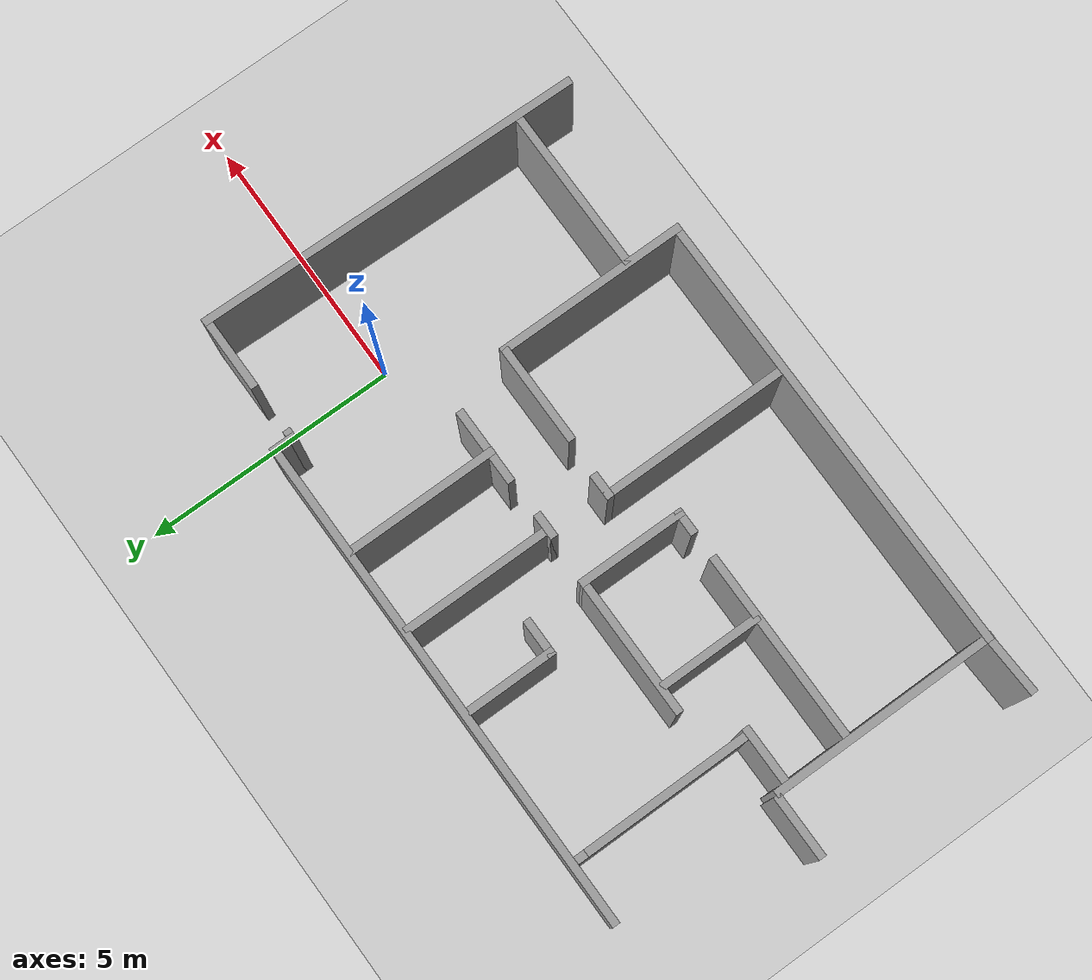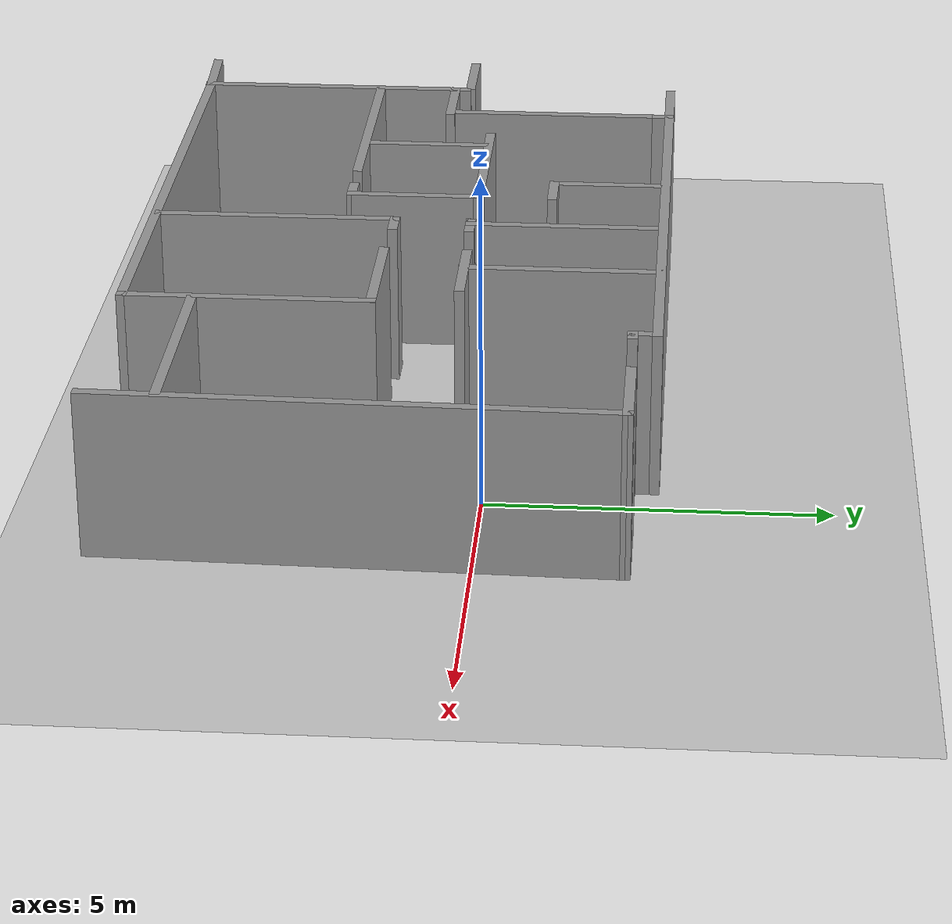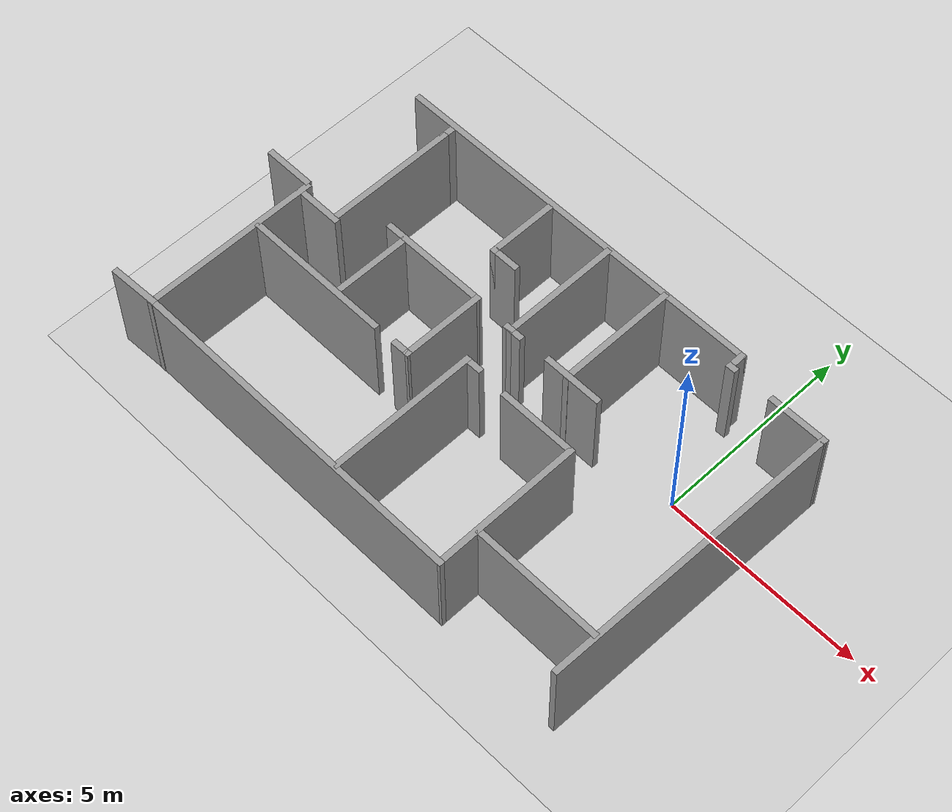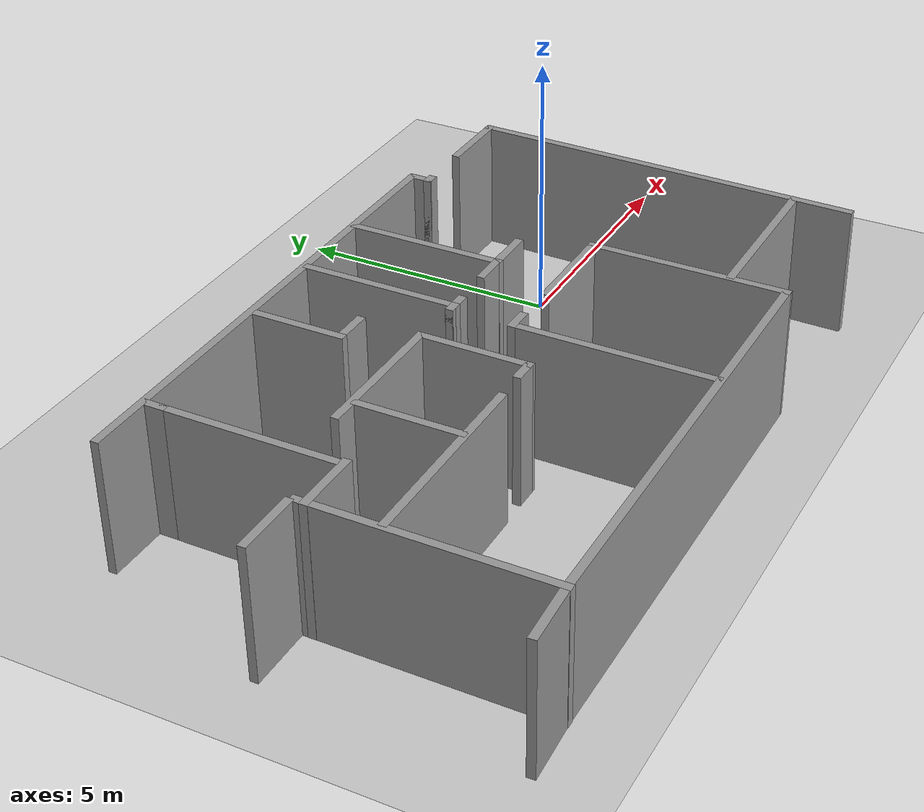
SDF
<sdf version="1.6">
 <world name="default">
  <light name="sun" type="directional">
   <pose>0 0 10 0 -0 0</pose>
   <diffuse>0.8 0.8 0.8 1</diffuse>
   <specular>0.1 0.1 0.1 1</specular>
   <attenuation>
    <range>1000</range>
    <constant>0.9</constant>
    <linear>0.01</linear>
    <quadratic>0.001</quadratic>
   </attenuation>
   <direction>-0.5 0.5 -1</direction>
  </light>
  <model name="ground_plane">
   <static>1</static>
   <link name="link">
    <collision name="collision">
     <geometry><plane><normal>0 0 1</normal><size>100 100</size></plane></geometry>
     <surface><friction><ode><mu>100</mu><mu2>50</mu2></ode></friction></surface>
    </collision>
    <visual name="visual">
     <cast_shadows>0</cast_shadows>
     <geometry><plane><normal>0 0 1</normal><size>100 100</size></plane></geometry>
     <material>
      <script><uri>file://media/materials/scripts/gazebo.material</uri><name>Gazebo/Grey</name></script>
     </material>
    </visual>
   </link>
  </model>
  <gravity>0 0 -9.8</gravity>
  <magnetic_field>6e-06 2.3e-05 -4.2e-05</magnetic_field>
  <atmosphere type="adiabatic"/>
  <physics name="default_physics" default="0" type="ode">
   <max_step_size>0.001</max_step_size>
   <real_time_factor>1</real_time_factor>
   <real_time_update_rate>1000</real_time_update_rate>
  </physics>
  <scene><ambient>0.4 0.4 0.4 1</ambient><background>0.7 0.7 0.7 1</background><shadows>1</shadows></scene>
  <spherical_coordinates>
   <surface_model>EARTH_WGS84</surface_model>
   <latitude_deg>0</latitude_deg>
   <longitude_deg>0</longitude_deg>
   <elevation>0</elevation>
   <heading_deg>0</heading_deg>
  </spherical_coordinates>
  <model name="whiz_ex">
   <pose>-4.6388 -1.45356 0 0 -0 0</pose>
   <link name="Wall_10">
    <collision name="Wall_10_Collision">
     <geometry><box><size>1.25 0.15 2.5</size></box></geometry>
     <pose>0 0 1.25 0 -0 0</pose>
    </collision>
    <visual name="Wall_10_Visual">
     <pose>0 0 1.25 0 -0 0</pose>
     <geometry><box><size>1.25 0.15 2.5</size></box></geometry>
     <material>
      <script><uri>file://media/materials/scripts/gazebo.material</uri><name>Gazebo/Grey</name></script>
      <ambient>1 1 1 1</ambient>
     </material>
    </visual>
    <pose>-6.05295 0.541414 0 0 -0 3.14159</pose>
   </link>
   <link name="Wall_12">
    <collision name="Wall_12_Collision">
     <geometry><box><size>4.4737 0.15 2.5</size></box></geometry>
     <pose>0 0 1.25 0 -0 0</pose>
    </collision>
    <visual name="Wall_12_Visual">
     <pose>0 0 1.25 0 -0 0</pose>
     <geometry><box><size>4.4737 0.15 2.5</size></box></geometry>
     <material>
      <script><uri>file://media/materials/scripts/gazebo.material</uri><name>Gazebo/Grey</name></script>
      <ambient>1 1 1 1</ambient>
     </material>
    </visual>
    <pose>-5.40643 -1.68841 0 0 -0 1.5708</pose>
   </link>
   <link name="Wall_15">
    <collision name="Wall_15_Collision">
     <geometry><box><size>1.25111 0.15 2.5</size></box></geometry>
     <pose>0 0 1.25 0 -0 0</pose>
    </collision>
    <visual name="Wall_15_Visual">
     <pose>0 0 1.25 0 -0 0</pose>
     <geometry><box><size>1.25111 0.15 2.5</size></box></geometry>
     <material>
      <script><uri>file://media/materials/scripts/gazebo.material</uri><name>Gazebo/Grey</name></script>
      <ambient>1 1 1 1</ambient>
     </material>
    </visual>
    <pose>-5.95643 -3.86341 0 0 0 -3.09668</pose>
   </link>
   <link name="Wall_18">
    <collision name="Wall_18_Collision">
     <geometry><box><size>0.5 0.15 2.5</size></box></geometry>
     <pose>0 0 1.25 0 -0 0</pose>
    </collision>
    <visual name="Wall_18_Visual">
     <pose>0 0 1.25 0 -0 0</pose>
     <geometry><box><size>0.5 0.15 2.5</size></box></geometry>
     <material>
      <script><uri>file://media/materials/scripts/gazebo.material</uri><name>Gazebo/Grey</name></script>
      <ambient>1 1 1 1</ambient>
     </material>
    </visual>
    <pose>0.389091 -0.180158 0 0 -0 0</pose>
   </link>
   <link name="Wall_2">
    <collision name="Wall_2_Collision">
     <geometry><box><size>7.5674 0.15 2.5</size></box></geometry>
     <pose>0 0 1.25 0 -0 0</pose>
    </collision>
    <visual name="Wall_2_Visual">
     <pose>0 0 1.25 0 -0 0</pose>
     <geometry><box><size>7.5674 0.15 2.5</size></box></geometry>
     <material>
      <script><uri>file://media/materials/scripts/gazebo.material</uri><name>Gazebo/Grey</name></script>
      <ambient>1 1 1 1</ambient>
     </material>
    </visual>
    <pose>6.52247 -0.153961 0 0 0 -1.59207</pose>
   </link>
   <link name="Wall_20">
    <collision name="Wall_20_Collision">
     <geometry><box><size>3.75 0.15 2.5</size></box></geometry>
     <pose>0 0 1.25 0 -0 0</pose>
    </collision>
    <visual name="Wall_20_Visual">
     <pose>0 0 1.25 0 -0 0</pose>
     <geometry><box><size>3.75 0.15 2.5</size></box></geometry>
     <material>
      <script><uri>file://media/materials/scripts/gazebo.material</uri><name>Gazebo/Grey</name></script>
      <ambient>1 1 1 1</ambient>
     </material>
    </visual>
    <pose>0.214091 -1.98016 0 0 0 -1.5708</pose>
   </link>
   <link name="Wall_22">
    <collision name="Wall_22_Collision">
     <geometry><box><size>2 0.15 2.5</size></box></geometry>
     <pose>0 0 1.25 0 -0 0</pose>
    </collision>
    <visual name="Wall_22_Visual">
     <pose>0 0 1.25 0 -0 0</pose>
     <geometry><box><size>2 0.15 2.5</size></box></geometry>
     <material>
      <script><uri>file://media/materials/scripts/gazebo.material</uri><name>Gazebo/Grey</name></script>
      <ambient>1 1 1 1</ambient>
     </material>
    </visual>
    <pose>2.30947 -0.232759 0 0 -0 0</pose>
   </link>
   <link name="Wall_23">
    <collision name="Wall_23_Collision">
     <geometry><box><size>3.75 0.15 2.5</size></box></geometry>
     <pose>0 0 1.25 0 -0 0</pose>
    </collision>
    <visual name="Wall_23_Visual">
     <pose>0 0 1.25 0 -0 0</pose>
     <geometry><box><size>3.75 0.15 2.5</size></box></geometry>
     <material>
      <script><uri>file://media/materials/scripts/gazebo.material</uri><name>Gazebo/Grey</name></script>
      <ambient>1 1 1 1</ambient>
     </material>
    </visual>
    <pose>3.23447 -2.03276 0 0 0 -1.5708</pose>
   </link>
   <link name="Wall_25">
    <collision name="Wall_25_Collision">
     <geometry><box><size>3.25 0.15 2.5</size></box></geometry>
     <pose>0 0 1.25 0 -0 0</pose>
    </collision>
    <visual name="Wall_25_Visual">
     <pose>0 0 1.25 0 -0 0</pose>
     <geometry><box><size>3.25 0.15 2.5</size></box></geometry>
     <material>
      <script><uri>file://media/materials/scripts/gazebo.material</uri><name>Gazebo/Grey</name></script>
      <ambient>1 1 1 1</ambient>
     </material>
    </visual>
    <pose>4.85442 -2.81022 0 0 -0 0</pose>
   </link>
   <link name="Wall_27">
    <collision name="Wall_27_Collision">
     <geometry><box><size>8.79095 0.15 2.5</size></box></geometry>
     <pose>0 0 1.25 0 -0 0</pose>
    </collision>
    <visual name="Wall_27_Visual">
     <pose>0 0 1.25 0 -0 0</pose>
     <geometry><box><size>8.79095 0.15 2.5</size></box></geometry>
     <material>
      <script><uri>file://media/materials/scripts/gazebo.material</uri><name>Gazebo/Grey</name></script>
      <ambient>1 1 1 1</ambient>
     </material>
    </visual>
    <pose>-1.08598 -3.83573 0 0 -0 0.000687</pose>
   </link>
   <link name="Wall_31">
    <collision name="Wall_31_Collision">
     <geometry><box><size>2.76315 0.15 2.5</size></box></geometry>
     <pose>0 0 1.25 0 -0 0</pose>
    </collision>
    <visual name="Wall_31_Visual">
     <pose>0 0 1.25 0 -0 0</pose>
     <geometry><box><size>2.76315 0.15 2.5</size></box></geometry>
     <material>
      <script><uri>file://media/materials/scripts/gazebo.material</uri><name>Gazebo/Grey</name></script>
      <ambient>1 1 1 1</ambient>
     </material>
    </visual>
    <pose>-2.04362 1.02243 0 0 -0 0</pose>
   </link>
   <link name="Wall_33">
    <collision name="Wall_33_Collision">
     <geometry><box><size>0.5 0.15 2.5</size></box></geometry>
     <pose>0 0 1.25 0 -0 0</pose>
    </collision>
    <visual name="Wall_33_Visual">
     <pose>0 0 1.25 0 -0 0</pose>
     <geometry><box><size>0.5 0.15 2.5</size></box></geometry>
     <material>
      <script><uri>file://media/materials/scripts/gazebo.material</uri><name>Gazebo/Grey</name></script>
      <ambient>1 1 1 1</ambient>
     </material>
    </visual>
    <pose>-0.920191 -0.947573 0 0 -0 3.14159</pose>
   </link>
   <link name="Wall_38">
    <collision name="Wall_38_Collision">
     <geometry><box><size>3.75 0.15 2.5</size></box></geometry>
     <pose>0 0 1.25 0 -0 0</pose>
    </collision>
    <visual name="Wall_38_Visual">
     <pose>0 0 1.25 0 -0 0</pose>
     <geometry><box><size>3.75 0.15 2.5</size></box></geometry>
     <material>
      <script><uri>file://media/materials/scripts/gazebo.material</uri><name>Gazebo/Grey</name></script>
      <ambient>1 1 1 1</ambient>
     </material>
    </visual>
    <pose>-3.52433 -0.96048 0 0 -0 3.14159</pose>
   </link>
   <link name="Wall_4">
    <collision name="Wall_4_Collision">
     <geometry><box><size>1.5 0.15 2.5</size></box></geometry>
     <pose>0 0 1.25 0 -0 0</pose>
    </collision>
    <visual name="Wall_4_Visual">
     <pose>0 0 1.25 0 -0 0</pose>
     <geometry><box><size>1.5 0.15 2.5</size></box></geometry>
     <material>
      <script><uri>file://media/materials/scripts/gazebo.material</uri><name>Gazebo/Grey</name></script>
      <ambient>1 1 1 1</ambient>
     </material>
    </visual>
    <pose>5.92637 3.5539 0 0 -0 3.14159</pose>
   </link>
   <link name="Wall_40">
    <collision name="Wall_40_Collision">
     <geometry><box><size>2 0.15 2.5</size></box></geometry>
     <pose>0 0 1.25 0 -0 0</pose>
    </collision>
    <visual name="Wall_40_Visual">
     <pose>0 0 1.25 0 -0 0</pose>
     <geometry><box><size>2 0.15 2.5</size></box></geometry>
     <material>
      <script><uri>file://media/materials/scripts/gazebo.material</uri><name>Gazebo/Grey</name></script>
      <ambient>1 1 1 1</ambient>
     </material>
    </visual>
    <pose>-2.90026 0.016761 0 0 0 -1.5708</pose>
   </link>
   <link name="Wall_44">
    <collision name="Wall_44_Collision">
     <geometry><box><size>1.25 0.15 2.5</size></box></geometry>
     <pose>0 0 1.25 0 -0 0</pose>
    </collision>
    <visual name="Wall_44_Visual">
     <pose>0 0 1.25 0 -0 0</pose>
     <geometry><box><size>1.25 0.15 2.5</size></box></geometry>
     <material>
      <script><uri>file://media/materials/scripts/gazebo.material</uri><name>Gazebo/Grey</name></script>
      <ambient>1 1 1 1</ambient>
     </material>
    </visual>
    <pose>-4.85954 0.293641 0 0 -0 3.14159</pose>
   </link>
   <link name="Wall_47">
    <collision name="Wall_47_Collision">
     <geometry><box><size>2.12002 0.15 2.5</size></box></geometry>
     <pose>0 0 1.25 0 -0 0</pose>
    </collision>
    <visual name="Wall_47_Visual">
     <pose>0 0 1.25 0 -0 0</pose>
     <geometry><box><size>2.12002 0.15 2.5</size></box></geometry>
     <material>
      <script><uri>file://media/materials/scripts/gazebo.material</uri><name>Gazebo/Grey</name></script>
      <ambient>1 1 1 1</ambient>
     </material>
    </visual>
    <pose>-0.741115 0.037427 0 0 -0 1.56666</pose>
   </link>
   <link name="Wall_49">
    <collision name="Wall_49_Collision">
     <geometry><box><size>1.75 0.15 2.5</size></box></geometry>
     <pose>0 0 1.25 0 -0 0</pose>
    </collision>
    <visual name="Wall_49_Visual">
     <pose>0 0 1.25 0 -0 0</pose>
     <geometry><box><size>1.75 0.15 2.5</size></box></geometry>
     <material>
      <script><uri>file://media/materials/scripts/gazebo.material</uri><name>Gazebo/Grey</name></script>
      <ambient>1 1 1 1</ambient>
     </material>
    </visual>
    <pose>-1.36298 2.95769 0 0 0 -1.5708</pose>
   </link>
   <link name="Wall_50">
    <collision name="Wall_50_Collision">
     <geometry><box><size>0.75 0.15 2.5</size></box></geometry>
     <pose>0 0 1.25 0 -0 0</pose>
    </collision>
    <visual name="Wall_50_Visual">
     <pose>0 0 1.25 0 -0 0</pose>
     <geometry><box><size>0.75 0.15 2.5</size></box></geometry>
     <material>
      <script><uri>file://media/materials/scripts/gazebo.material</uri><name>Gazebo/Grey</name></script>
      <ambient>1 1 1 1</ambient>
     </material>
    </visual>
    <pose>-1.06298 2.15769 0 0 -0 0</pose>
   </link>
   <link name="Wall_52">
    <collision name="Wall_52_Collision">
     <geometry><box><size>3 0.15 2.5</size></box></geometry>
     <pose>0 0 1.25 0 -0 0</pose>
    </collision>
    <visual name="Wall_52_Visual">
     <pose>0 0 1.25 0 -0 0</pose>
     <geometry><box><size>3 0.15 2.5</size></box></geometry>
     <material>
      <script><uri>file://media/materials/scripts/gazebo.material</uri><name>Gazebo/Grey</name></script>
      <ambient>1 1 1 1</ambient>
     </material>
    </visual>
    <pose>0.325194 2.40113 0 0 0 -1.5708</pose>
   </link>
   <link name="Wall_53">
    <collision name="Wall_53_Collision">
     <geometry><box><size>0.25 0.15 2.5</size></box></geometry>
     <pose>0 0 1.25 0 -0 0</pose>
    </collision>
    <visual name="Wall_53_Visual">
     <pose>0 0 1.25 0 -0 0</pose>
     <geometry><box><size>0.25 0.15 2.5</size></box></geometry>
     <material>
      <script><uri>file://media/materials/scripts/gazebo.material</uri><name>Gazebo/Grey</name></script>
      <ambient>1 1 1 1</ambient>
     </material>
    </visual>
    <pose>0.275194 0.976133 0 0 -0 3.14159</pose>
   </link>
   <link name="Wall_54">
    <collision name="Wall_54_Collision">
     <geometry><box><size>0.5 0.15 2.5</size></box></geometry>
     <pose>0 0 1.25 0 -0 0</pose>
    </collision>
    <visual name="Wall_54_Visual">
     <pose>0 0 1.25 0 -0 0</pose>
     <geometry><box><size>0.5 0.15 2.5</size></box></geometry>
     <material>
      <script><uri>file://media/materials/scripts/gazebo.material</uri><name>Gazebo/Grey</name></script>
      <ambient>1 1 1 1</ambient>
     </material>
    </visual>
    <pose>0.400194 0.976133 0 0 -0 0</pose>
   </link>
   <link name="Wall_56">
    <collision name="Wall_56_Collision">
     <geometry><box><size>1.5 0.15 2.5</size></box></geometry>
     <pose>0 0 1.25 0 -0 0</pose>
    </collision>
    <visual name="Wall_56_Visual">
     <pose>0 0 1.25 0 -0 0</pose>
     <geometry><box><size>1.5 0.15 2.5</size></box></geometry>
     <material>
      <script><uri>file://media/materials/scripts/gazebo.material</uri><name>Gazebo/Grey</name></script>
      <ambient>1 1 1 1</ambient>
     </material>
    </visual>
    <pose>2.08001 1.00491 0 0 -0 0</pose>
   </link>
   <link name="Wall_58">
    <collision name="Wall_58_Collision">
     <geometry><box><size>3 0.15 2.5</size></box></geometry>
     <pose>0 0 1.25 0 -0 0</pose>
    </collision>
    <visual name="Wall_58_Visual">
     <pose>0 0 1.25 0 -0 0</pose>
     <geometry><box><size>3 0.15 2.5</size></box></geometry>
     <material>
      <script><uri>file://media/materials/scripts/gazebo.material</uri><name>Gazebo/Grey</name></script>
      <ambient>1 1 1 1</ambient>
     </material>
    </visual>
    <pose>1.95253 2.42395 0 0 0 -1.5708</pose>
   </link>
   <link name="Wall_6">
    <collision name="Wall_6_Collision">
     <geometry><box><size>0.25 0.15 2.5</size></box></geometry>
     <pose>0 0 1.25 0 -0 0</pose>
    </collision>
    <visual name="Wall_6_Visual">
     <pose>0 0 1.25 0 -0 0</pose>
     <geometry><box><size>0.25 0.15 2.5</size></box></geometry>
     <material>
      <script><uri>file://media/materials/scripts/gazebo.material</uri><name>Gazebo/Grey</name></script>
      <ambient>1 1 1 1</ambient>
     </material>
    </visual>
    <pose>4.14705 3.54141 0 0 -0 3.14159</pose>
   </link>
   <link name="Wall_60">
    <collision name="Wall_60_Collision">
     <geometry><box><size>0.5 0.15 2.5</size></box></geometry>
     <pose>0 0 1.25 0 -0 0</pose>
    </collision>
    <visual name="Wall_60_Visual">
     <pose>0 0 1.25 0 -0 0</pose>
     <geometry><box><size>0.5 0.15 2.5</size></box></geometry>
     <material>
      <script><uri>file://media/materials/scripts/gazebo.material</uri><name>Gazebo/Grey</name></script>
      <ambient>1 1 1 1</ambient>
     </material>
    </visual>
    <pose>-4.35804 3.71031 0 0 0 -1.5708</pose>
   </link>
   <link name="Wall_64">
    <collision name="Wall_64_Collision">
     <geometry><box><size>3.25 0.15 2.5</size></box></geometry>
     <pose>0 0 1.25 0 -0 0</pose>
    </collision>
    <visual name="Wall_64_Visual">
     <pose>0 0 1.25 0 -0 0</pose>
     <geometry><box><size>3.25 0.15 2.5</size></box></geometry>
     <material>
      <script><uri>file://media/materials/scripts/gazebo.material</uri><name>Gazebo/Grey</name></script>
      <ambient>1 1 1 1</ambient>
     </material>
    </visual>
    <pose>-4.35804 1.98531 0 0 0 -1.5708</pose>
   </link>
   <link name="Wall_7">
    <collision name="Wall_7_Collision">
     <geometry><box><size>0.5 0.15 2.5</size></box></geometry>
     <pose>0 0 1.25 0 -0 0</pose>
    </collision>
    <visual name="Wall_7_Visual">
     <pose>0 0 1.25 0 -0 0</pose>
     <geometry><box><size>0.5 0.15 2.5</size></box></geometry>
     <material>
      <script><uri>file://media/materials/scripts/gazebo.material</uri><name>Gazebo/Grey</name></script>
      <ambient>1 1 1 1</ambient>
     </material>
    </visual>
    <pose>4.09705 3.71641 0 0 -0 1.5708</pose>
   </link>
   <link name="Wall_8">
    <collision name="Wall_8_Collision">
     <geometry><box><size>9.75 0.15 2.5</size></box></geometry>
     <pose>0 0 1.25 0 -0 0</pose>
    </collision>
    <visual name="Wall_8_Visual">
     <pose>0 0 1.25 0 -0 0</pose>
     <geometry><box><size>9.75 0.15 2.5</size></box></geometry>
     <material>
      <script><uri>file://media/materials/scripts/gazebo.material</uri><name>Gazebo/Grey</name></script>
      <ambient>1 1 1 1</ambient>
     </material>
    </visual>
    <pose>-0.702951 3.89141 0 0 -0 3.14159</pose>
   </link>
   <static>1</static>
  </model>
 </world>
</sdf>
